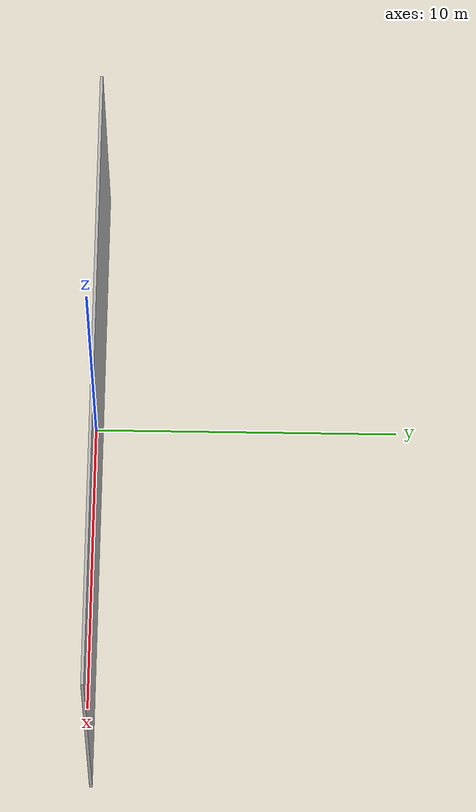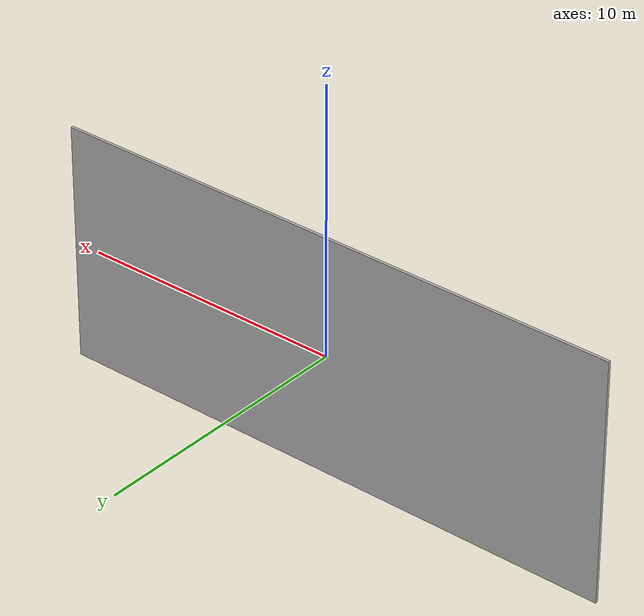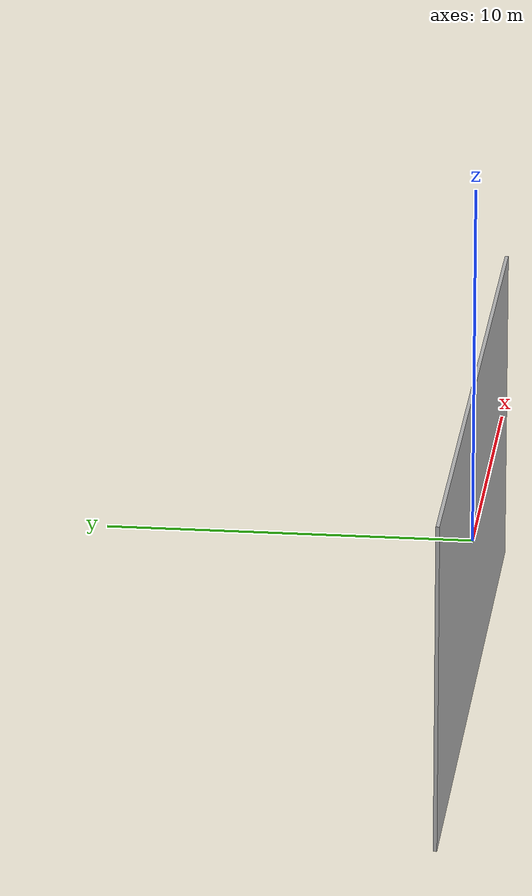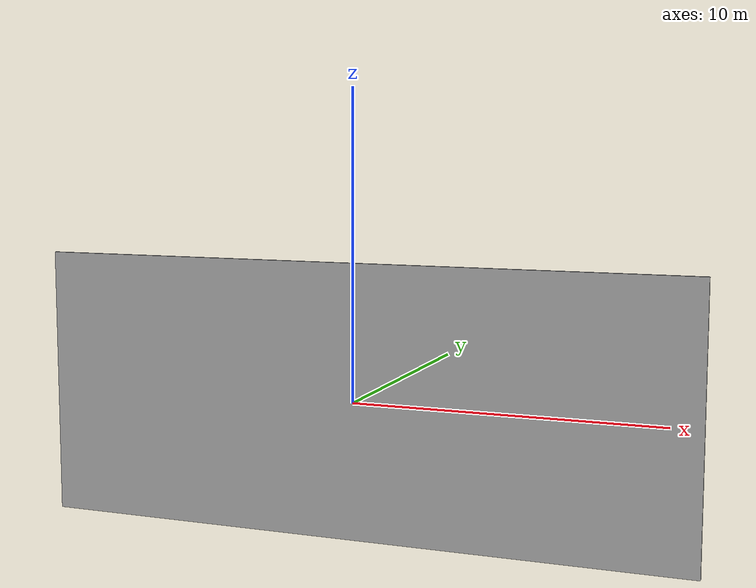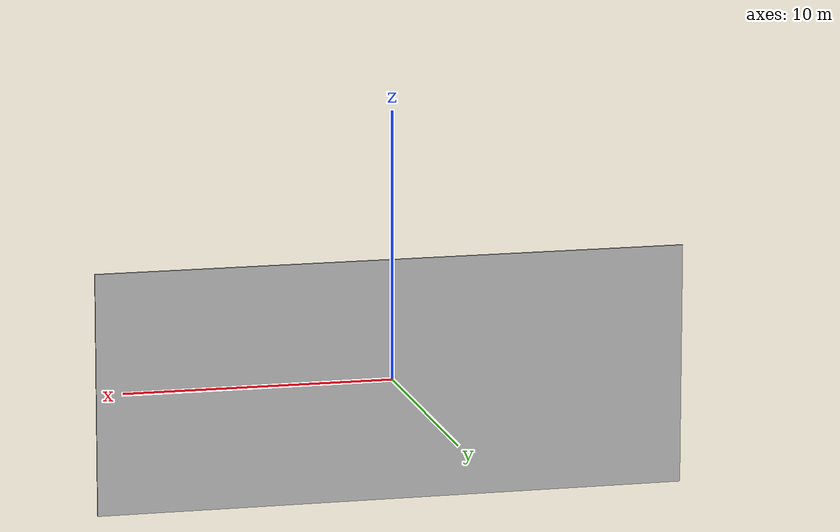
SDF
<?xml version="1.0" ?>
<sdf version="1.5">
  <model name="IARC Gym Wall">
    <static>true</static>
    <link name="link">
      <collision name="collision">
        <geometry>
          <box>
            <size>22 0.1 9</size>
          </box>
        </geometry>
      </collision>
      <visual name="visual">
        <cast_shadows>false</cast_shadows>
        <geometry>
          <box>
            <size>22 0.1 9</size>
          </box>
        </geometry>
        <material>
          <script>
            <uri>model://IARC Gym Wall/materials/scripts</uri>
            <uri>model://IARC Gym Wall/materials/textures</uri>
            <name>vrc/GymWall</name>
          </script>
        </material>
      </visual>
    </link>
  </model>
</sdf>
